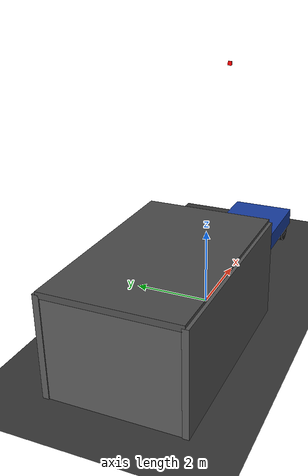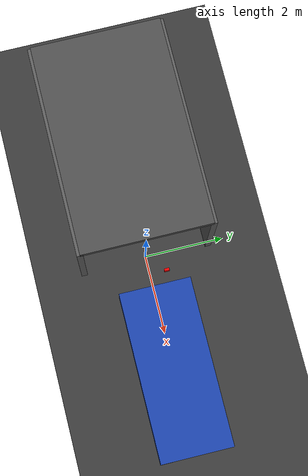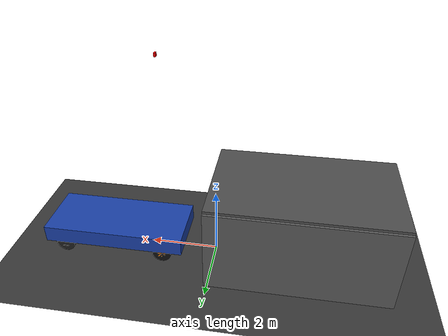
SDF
<?xml version="1.0" ?>
<sdf version="1.10">
  <world name="parking_robot_world">

    <!-- ====== 필수 시스템 플러그인 ====== -->
    <plugin filename="gz-sim8-physics-system"
            name="gz::sim::systems::Physics"/>
    <plugin filename="gz-sim8-user-commands-system"
            name="gz::sim::systems::UserCommands"/>
    <plugin filename="gz-sim8-scene-broadcaster-system"
            name="gz::sim::systems::SceneBroadcaster"/>
    <plugin filename="gz-sim8-sensors-system"
            name="gz::sim::systems::Sensors">
      <render_engine>ogre2</render_engine>
    </plugin>
    <plugin filename="gz-sim8-contact-system"
            name="gz::sim::systems::Contact"/>

    <!-- 조명 -->
    <light type="directional" name="sun">
      <cast_shadows>true</cast_shadows>
      <pose>0 0 10 0 0 0</pose>
      <diffuse>0.9 0.9 0.9 1</diffuse>
      <specular>0.3 0.3 0.3 1</specular>
      <direction>-0.5 0.1 -0.9</direction>
    </light>

    <!-- ====== 바닥 ====== -->
    <model name="ground_plane">
      <static>true</static>
      <link name="link">
        <collision name="collision">
          <geometry><plane><normal>0 0 1</normal><size>50 50</size></plane></geometry>
        </collision>
        <visual name="visual">
          <geometry><plane><normal>0 0 1</normal><size>50 50</size></plane></geometry>
          <material>
            <ambient>0.22 0.22 0.22 1</ambient>
            <diffuse>0.22 0.22 0.22 1</diffuse>
          </material>
        </visual>
      </link>
    </model>

    <!-- ====== 세차 부스 ====== -->
    <!-- 남쪽 벽 -->
    <model name="booth_south_wall">
      <static>true</static>
      <pose>-2.5 -1.6 1.25 0 0 0</pose>
      <link name="link">
        <collision name="collision">
          <geometry><box><size>5.2 0.15 2.5</size></box></geometry>
        </collision>
        <visual name="visual">
          <geometry><box><size>5.2 0.15 2.5</size></box></geometry>
          <material>
            <ambient>0.35 0.35 0.35 1</ambient>
            <diffuse>0.35 0.35 0.35 1</diffuse>
            <emissive>0.05 0.05 0.05 1</emissive>
          </material>
        </visual>
      </link>
    </model>

    <!-- 북쪽 벽 -->
    <model name="booth_north_wall">
      <static>true</static>
      <pose>-2.5 1.6 1.25 0 0 0</pose>
      <link name="link">
        <collision name="collision">
          <geometry><box><size>5.2 0.15 2.5</size></box></geometry>
        </collision>
        <visual name="visual">
          <geometry><box><size>5.2 0.15 2.5</size></box></geometry>
          <material>
            <ambient>0.35 0.35 0.35 1</ambient>
            <diffuse>0.35 0.35 0.35 1</diffuse>
            <emissive>0.05 0.05 0.05 1</emissive>
          </material>
        </visual>
      </link>
    </model>

    <!-- 후면 벽 -->
    <model name="booth_back_wall">
      <static>true</static>
      <pose>-5.0 0 1.25 0 0 0</pose>
      <link name="link">
        <collision name="collision">
          <geometry><box><size>0.15 3.2 2.5</size></box></geometry>
        </collision>
        <visual name="visual">
          <geometry><box><size>0.15 3.2 2.5</size></box></geometry>
          <material>
            <ambient>0.35 0.35 0.35 1</ambient>
            <diffuse>0.35 0.35 0.35 1</diffuse>
            <emissive>0.05 0.05 0.05 1</emissive>
          </material>
        </visual>
      </link>
    </model>

    <!-- 지붕 -->
    <model name="booth_roof">
      <static>true</static>
      <pose>-2.5 0 2.5 0 0 0</pose>
      <link name="link">
        <visual name="visual">
          <geometry><box><size>5.2 3.2 0.15</size></box></geometry>
          <material>
            <ambient>0.3 0.3 0.3 1</ambient>
            <diffuse>0.3 0.3 0.3 1</diffuse>
            <emissive>0.04 0.04 0.04 1</emissive>
          </material>
        </visual>
      </link>
    </model>

    <!-- ====== 정차된 차량 (static) ====== -->
    <!-- 차체 -->
    <model name="car_body">
      <static>true</static>
      <pose>3.0 0 0.58 0 0 0</pose>
      <link name="link">
        <visual name="visual">
          <geometry><box><size>4.2 1.8 0.5</size></box></geometry>
          <material>
            <ambient>0.1 0.25 0.65 1</ambient>
            <diffuse>0.1 0.25 0.65 1</diffuse>
            <emissive>0.02 0.05 0.13 1</emissive>
          </material>
        </visual>
      </link>
    </model>

    <!-- 앞바퀴 북쪽 (Phase 감지 타깃 — 주황 허브) -->
    <model name="fl_wheel">
      <static>true</static>
      <pose>1.5 0.78 0.3 1.5708 0 0</pose>
      <link name="link">
        <collision name="collision">
          <geometry><cylinder><radius>0.28</radius><length>0.22</length></cylinder></geometry>
        </collision>
        <!-- 타이어 외형 -->
        <visual name="tire">
          <geometry><cylinder><radius>0.28</radius><length>0.22</length></cylinder></geometry>
          <material>
            <ambient>0.06 0.06 0.06 1</ambient>
            <diffuse>0.06 0.06 0.06 1</diffuse>
            <emissive>0.02 0.02 0.02 1</emissive>
          </material>
        </visual>
        <!-- 주황 허브 (비전 감지 타깃) -->
        <visual name="hub">
          <geometry><box><size>0.22 0.24 0.22</size></box></geometry>
          <material>
            <ambient>1 0.5 0 1</ambient>
            <diffuse>1 0.5 0 1</diffuse>
            <emissive>0.9 0.35 0 1</emissive>
          </material>
        </visual>
      </link>
    </model>

    <!-- 앞바퀴 남쪽 (Phase 감지 타깃 — 주황 허브) -->
    <model name="fr_wheel">
      <static>true</static>
      <pose>1.5 -0.78 0.3 1.5708 0 0</pose>
      <link name="link">
        <collision name="collision">
          <geometry><cylinder><radius>0.28</radius><length>0.22</length></cylinder></geometry>
        </collision>
        <visual name="tire">
          <geometry><cylinder><radius>0.28</radius><length>0.22</length></cylinder></geometry>
          <material>
            <ambient>0.06 0.06 0.06 1</ambient>
            <diffuse>0.06 0.06 0.06 1</diffuse>
            <emissive>0.02 0.02 0.02 1</emissive>
          </material>
        </visual>
        <visual name="hub">
          <geometry><box><size>0.22 0.24 0.22</size></box></geometry>
          <material>
            <ambient>1 0.5 0 1</ambient>
            <diffuse>1 0.5 0 1</diffuse>
            <emissive>0.9 0.35 0 1</emissive>
          </material>
        </visual>
      </link>
    </model>

    <!-- 뒷바퀴 북쪽 (회색) -->
    <model name="rl_wheel">
      <static>true</static>
      <pose>4.5 0.78 0.3 1.5708 0 0</pose>
      <link name="link">
        <visual name="tire">
          <geometry><cylinder><radius>0.28</radius><length>0.22</length></cylinder></geometry>
          <material>
            <ambient>0.12 0.12 0.12 1</ambient>
            <diffuse>0.12 0.12 0.12 1</diffuse>
            <emissive>0.02 0.02 0.02 1</emissive>
          </material>
        </visual>
        <visual name="hub">
          <geometry><box><size>0.22 0.24 0.22</size></box></geometry>
          <material>
            <ambient>0.4 0.4 0.4 1</ambient>
            <diffuse>0.4 0.4 0.4 1</diffuse>
            <emissive>0.05 0.05 0.05 1</emissive>
          </material>
        </visual>
      </link>
    </model>

    <!-- 뒷바퀴 남쪽 (회색) -->
    <model name="rr_wheel">
      <static>true</static>
      <pose>4.5 -0.78 0.3 1.5708 0 0</pose>
      <link name="link">
        <visual name="tire">
          <geometry><cylinder><radius>0.28</radius><length>0.22</length></cylinder></geometry>
          <material>
            <ambient>0.12 0.12 0.12 1</ambient>
            <diffuse>0.12 0.12 0.12 1</diffuse>
            <emissive>0.02 0.02 0.02 1</emissive>
          </material>
        </visual>
        <visual name="hub">
          <geometry><box><size>0.22 0.24 0.22</size></box></geometry>
          <material>
            <ambient>0.4 0.4 0.4 1</ambient>
            <diffuse>0.4 0.4 0.4 1</diffuse>
            <emissive>0.05 0.05 0.05 1</emissive>
          </material>
        </visual>
      </link>
    </model>

    <!-- ====== 로봇 (4륜 메카넘) ====== -->
    <model name="robot_car">
      <pose>-4 0 0.055 0 0 0</pose>

      <!-- 본체 -->
      <link name="base_link">
        <inertial>
          <mass>8.0</mass>
          <inertia>
            <ixx>0.083</ixx><iyy>0.083</iyy><izz>0.13</izz>
            <ixy>0</ixy><ixz>0</ixz><iyz>0</iyz>
          </inertia>
        </inertial>
        <visual name="body_visual">
          <geometry><box><size>0.58 0.46 0.08</size></box></geometry>
          <material>
            <ambient>0.1 0.75 0.1 1</ambient>
            <diffuse>0.1 0.75 0.1 1</diffuse>
            <emissive>0.02 0.15 0.02 1</emissive>
          </material>
        </visual>
        <collision name="body_collision">
          <geometry><box><size>0.58 0.46 0.08</size></box></geometry>
        </collision>

        <!-- 전면 카메라 센서 -->
        <sensor name="robot_camera" type="camera">
          <pose>0.29 0 0.06 0 -0.1 0</pose>
          <always_on>true</always_on>
          <update_rate>30</update_rate>
          <camera>
            <horizontal_fov>1.2</horizontal_fov>
            <image>
              <width>640</width>
              <height>480</height>
              <format>R8G8B8</format>
            </image>
            <clip><near>0.05</near><far>20</far></clip>
          </camera>
          <topic>/camera/image_raw</topic>
        </sensor>
      </link>

      <!-- 앞 왼쪽 바퀴 (FL) -->
      <link name="fl_wheel_link">
        <pose>0.22 0.22 0.0 -1.5708 0 0</pose>
        <inertial>
          <mass>0.3</mass>
          <inertia>
            <ixx>0.0003</ixx><iyy>0.0003</iyy><izz>0.0005</izz>
            <ixy>0</ixy><ixz>0</ixz><iyz>0</iyz>
          </inertia>
        </inertial>
        <visual name="visual">
          <geometry><cylinder><radius>0.055</radius><length>0.05</length></cylinder></geometry>
          <material>
            <ambient>0.1 0.1 0.1 1</ambient>
            <diffuse>0.1 0.1 0.1 1</diffuse>
          </material>
        </visual>
        <collision name="collision">
          <geometry><sphere><radius>0.055</radius></sphere></geometry>
          <surface>
            <friction>
              <ode>
                <mu>1.0</mu><mu2>0.0</mu2>
                <fdir1 gz:expressed_in="base_link">1 -1 0</fdir1>
              </ode>
            </friction>
          </surface>
        </collision>
      </link>
      <joint name="fl_joint" type="revolute">
        <parent>base_link</parent>
        <child>fl_wheel_link</child>
        <axis>
          <xyz>0 0 1</xyz>
          <limit><lower>-1.79769e+308</lower><upper>1.79769e+308</upper></limit>
        </axis>
      </joint>

      <!-- 앞 오른쪽 바퀴 (FR) -->
      <link name="fr_wheel_link">
        <pose>0.22 -0.22 0.0 -1.5708 0 0</pose>
        <inertial>
          <mass>0.3</mass>
          <inertia>
            <ixx>0.0003</ixx><iyy>0.0003</iyy><izz>0.0005</izz>
            <ixy>0</ixy><ixz>0</ixz><iyz>0</iyz>
          </inertia>
        </inertial>
        <visual name="visual">
          <geometry><cylinder><radius>0.055</radius><length>0.05</length></cylinder></geometry>
          <material>
            <ambient>0.1 0.1 0.1 1</ambient>
            <diffuse>0.1 0.1 0.1 1</diffuse>
          </material>
        </visual>
        <collision name="collision">
          <geometry><sphere><radius>0.055</radius></sphere></geometry>
          <surface>
            <friction>
              <ode>
                <mu>1.0</mu><mu2>0.0</mu2>
                <fdir1 gz:expressed_in="base_link">1 1 0</fdir1>
              </ode>
            </friction>
          </surface>
        </collision>
      </link>
      <joint name="fr_joint" type="revolute">
        <parent>base_link</parent>
        <child>fr_wheel_link</child>
        <axis>
          <xyz>0 0 1</xyz>
          <limit><lower>-1.79769e+308</lower><upper>1.79769e+308</upper></limit>
        </axis>
      </joint>

      <!-- 뒤 왼쪽 바퀴 (RL) -->
      <link name="rl_wheel_link">
        <pose>-0.22 0.22 0.0 -1.5708 0 0</pose>
        <inertial>
          <mass>0.3</mass>
          <inertia>
            <ixx>0.0003</ixx><iyy>0.0003</iyy><izz>0.0005</izz>
            <ixy>0</ixy><ixz>0</ixz><iyz>0</iyz>
          </inertia>
        </inertial>
        <visual name="visual">
          <geometry><cylinder><radius>0.055</radius><length>0.05</length></cylinder></geometry>
          <material>
            <ambient>0.1 0.1 0.1 1</ambient>
            <diffuse>0.1 0.1 0.1 1</diffuse>
          </material>
        </visual>
        <collision name="collision">
          <geometry><sphere><radius>0.055</radius></sphere></geometry>
          <surface>
            <friction>
              <ode>
                <mu>1.0</mu><mu2>0.0</mu2>
                <fdir1 gz:expressed_in="base_link">1 1 0</fdir1>
              </ode>
            </friction>
          </surface>
        </collision>
      </link>
      <joint name="rl_joint" type="revolute">
        <parent>base_link</parent>
        <child>rl_wheel_link</child>
        <axis>
          <xyz>0 0 1</xyz>
          <limit><lower>-1.79769e+308</lower><upper>1.79769e+308</upper></limit>
        </axis>
      </joint>

      <!-- 뒤 오른쪽 바퀴 (RR) -->
      <link name="rr_wheel_link">
        <pose>-0.22 -0.22 0.0 -1.5708 0 0</pose>
        <inertial>
          <mass>0.3</mass>
          <inertia>
            <ixx>0.0003</ixx><iyy>0.0003</iyy><izz>0.0005</izz>
            <ixy>0</ixy><ixz>0</ixz><iyz>0</iyz>
          </inertia>
        </inertial>
        <visual name="visual">
          <geometry><cylinder><radius>0.055</radius><length>0.05</length></cylinder></geometry>
          <material>
            <ambient>0.1 0.1 0.1 1</ambient>
            <diffuse>0.1 0.1 0.1 1</diffuse>
          </material>
        </visual>
        <collision name="collision">
          <geometry><sphere><radius>0.055</radius></sphere></geometry>
          <surface>
            <friction>
              <ode>
                <mu>1.0</mu><mu2>0.0</mu2>
                <fdir1 gz:expressed_in="base_link">1 -1 0</fdir1>
              </ode>
            </friction>
          </surface>
        </collision>
      </link>
      <joint name="rr_joint" type="revolute">
        <parent>base_link</parent>
        <child>rr_wheel_link</child>
        <axis>
          <xyz>0 0 1</xyz>
          <limit><lower>-1.79769e+308</lower><upper>1.79769e+308</upper></limit>
        </axis>
      </joint>

      <!-- 메카넘 드라이브 플러그인 (360도 이동) -->
      <plugin filename="gz-sim-mecanum-drive-system"
              name="gz::sim::systems::MecanumDrive">
        <front_left_joint>fl_joint</front_left_joint>
        <front_right_joint>fr_joint</front_right_joint>
        <back_left_joint>rl_joint</back_left_joint>
        <back_right_joint>rr_joint</back_right_joint>
        <wheel_separation>0.44</wheel_separation>
        <wheelbase>0.44</wheelbase>
        <wheel_radius>0.055</wheel_radius>
        <min_acceleration>-5</min_acceleration>
        <max_acceleration>5</max_acceleration>
        <topic>cmd_vel</topic>
        <odom_topic>/model/robot_car/odometry</odom_topic>
        <frame_id>odom</frame_id>
        <child_frame_id>robot_car/base_link</child_frame_id>
        <odom_publish_frequency>10</odom_publish_frequency>
      </plugin>

    </model>

    <!-- ====== 탑뷰 카메라 ====== -->
    <model name="overhead_cam_model">
      <static>true</static>
      <pose>1.5 0 6.0 0 1.5707963 0</pose>
      <link name="link">
        <visual name="visual">
          <geometry><box><size>0.1 0.1 0.05</size></box></geometry>
          <material><ambient>1 0 0 1</ambient><diffuse>1 0 0 1</diffuse></material>
        </visual>
        <sensor name="overhead_camera" type="camera">
          <always_on>true</always_on>
          <update_rate>10</update_rate>
          <camera>
            <horizontal_fov>1.5708</horizontal_fov>
            <image>
              <width>640</width>
              <height>480</height>
              <format>R8G8B8</format>
            </image>
            <clip><near>0.1</near><far>20</far></clip>
          </camera>
          <topic>/overhead/image_raw</topic>
        </sensor>
      </link>
    </model>

  </world>
</sdf>
